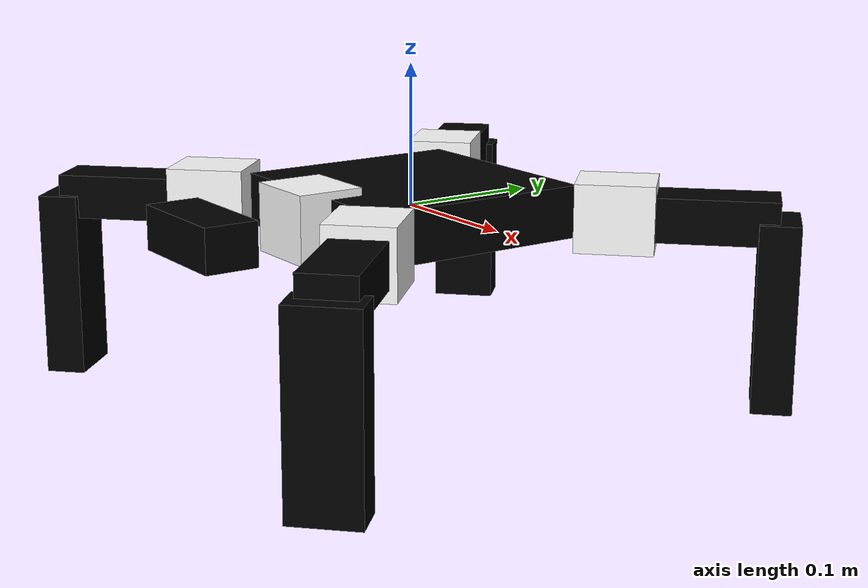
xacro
<?xml version="1.0"?>
<robot xmlns:xacro="http://www.ros.org/wiki/xacro" name="hp1">
<xacro:property name="pi" value="3.1415926535897931" />
<xacro:property name="bodylength" value=".165" />
<xacro:property name="bodywidth" value=".165" />

<link name="body">
  <visual>
    <origin xyz="0 0 0" />
    <geometry>
      <box size="${bodywidth} ${bodylength} .037" />
    </geometry>
    <material name="black">
      <color rgba="0 0 0 1"/>
    </material>
  </visual>
</link>

<link name="pan_link">
  <visual>
	<origin xyz="0 0 0" />
	<geometry>
	  <box size=".055 .048 .048" />
	</geometry>
	<material name="white">
	  <color rgba="1 1 1 1"/>
	</material>
  </visual>
</link>

<joint name="pan_joint" type="revolute">
  <parent link="body"/>
  <child link="pan_link"/>
  <origin xyz="0 ${-(bodylength/2)} 0" rpy="0 0 0" />
  <axis xyz="0 0 1" />
  <limit effort="500.0" lower="-1.5708" upper="1.5708" velocity="0.5"/>
</joint>

<link name="tilt_link">
  <visual>
	<origin xyz="0 0 0" />
	<geometry>
	  <box size=".083 .038 .031" />
	</geometry>
	<material name="black"/>
  </visual>
</link>

<joint name="tilt_joint" type="revolute">
  <parent link="pan_link"/>
  <child link="tilt_link"/>
  <origin xyz="0 ${-(bodylength/2)} 0" rpy="0 0 0" />
  <axis xyz="0 0 1" />
  <limit effort="500.0" lower="-1.5708" upper="1.5708" velocity="0.5"/>
</joint>

<xacro:macro name="leg" params="prefix reflectx reflecty coxa_angle femur_angle tibia_angle">

	<link name="${prefix}_coxa_link">
	  <visual>
	    <origin xyz="-.0275 0 0" />
	    <geometry>
	      <box size=".055 .048 .048" />
	    </geometry>
	    <material name="white">
	      <color rgba="1 1 1 1"/>
	    </material>
	  </visual>
	</link>

	<joint name="${prefix}_coxa_joint" type="revolute">
	  <parent link="body"/>
	  <child link="${prefix}_coxa_link"/>
	  <origin xyz="${reflectx*(bodywidth/2)} ${reflecty*(bodylength/2)} 0" rpy="0 0 ${coxa_angle}" />
	  <axis xyz="0 0 1" />
	  <limit effort="500.0" lower="-1.5708" upper="1.5708" velocity="0.5"/>
	</joint>

	<link name="${prefix}_femur_link">
	  <visual>
	    <origin xyz="-.0415 0 0" />
	    <geometry>
	      <box size=".083 .038 .031" />
	    </geometry>
	    <material name="black"/>
	  </visual>
	</link>

	<joint name="${prefix}_femur_joint" type="revolute">
	  <parent link="${prefix}_coxa_link"/>
	  <child link="${prefix}_femur_link"/>
	  <origin xyz="-.055 0 0" rpy="${femur_angle} 0 0" />
	  <axis xyz="0 1 0" />
	  <limit effort="500.0" lower="-1.5708" upper="1.5708" velocity="0.5"/>
	</joint>

	<link name="${prefix}_tibia_link">
	  <visual>
	    <origin xyz="0.0655 0 0" />
	    <geometry>
	      <box size=".132 .048 .028" />
	    </geometry>
	    <material name="black"/>
	  </visual>
	</link>

	<joint name="${prefix}_tibia_joint" type="revolute">
	  <parent link="${prefix}_femur_link"/>
	  <child link="${prefix}_tibia_link"/>
	  <origin xyz="-.083 0 0" rpy="0 ${tibia_angle}  0" />
	  <axis xyz="0 1 0" />
	  <limit effort="500.0" lower="-1.5708" upper="1.5708" velocity="0.5"/>
	</joint>

</xacro:macro>

<xacro:leg prefix="lf" reflectx="-1" 	reflecty="1" 	coxa_angle="-0.7854" femur_angle="-3.141" tibia_angle="-1.571" />
<xacro:leg prefix="lr" reflectx="-1" 	reflecty="-1" 	coxa_angle="0.7854" femur_angle="-3.141" tibia_angle="-1.571" />
<xacro:leg prefix="rf" reflectx="1" 	reflecty="1" 	coxa_angle="3.927" femur_angle="0" tibia_angle="1.571" />
<xacro:leg prefix="rr" reflectx="1" 	reflecty="-1" 	coxa_angle="-3.927" femur_angle="0" tibia_angle="1.571" />

</robot>
